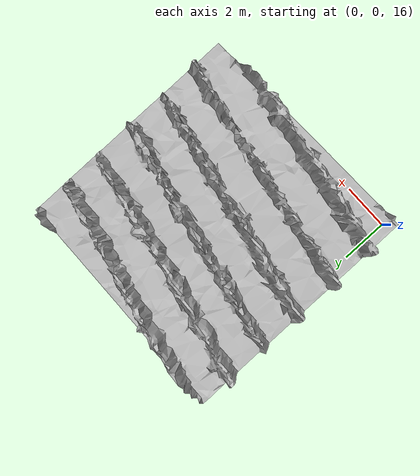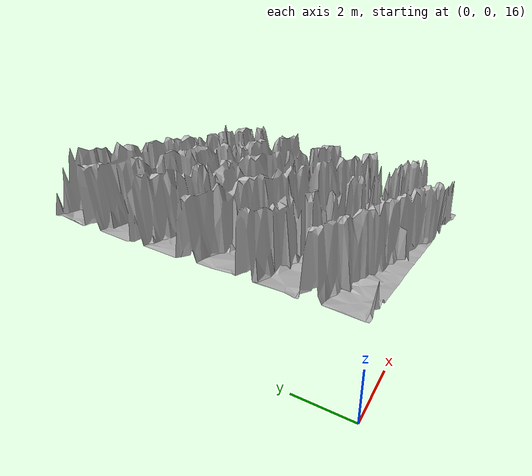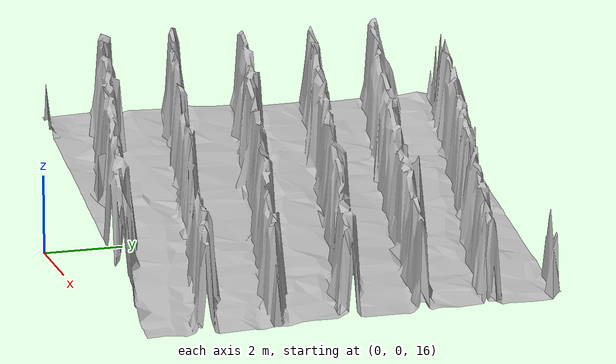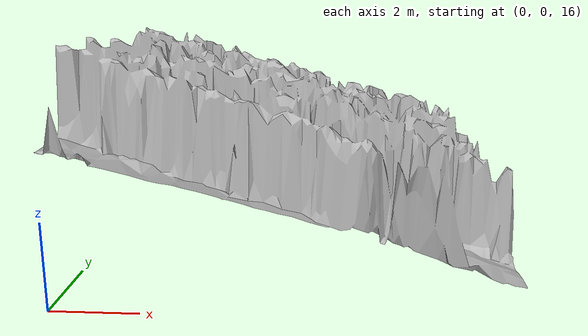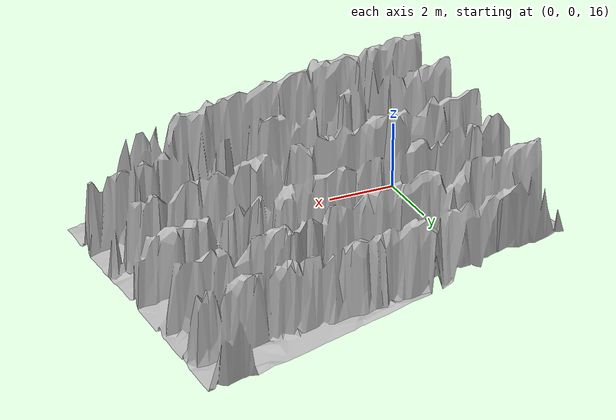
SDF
<?xml version="1.0" ?>
<sdf version="1.10">
    <model name="map_170_0">
        <link name="map_170_0_link">
            <visual name="map_170_0_visual">
                <geometry>
                    <mesh>
                        <uri>meshes/visual/map_170_0.obj</uri>
                    </mesh>
                </geometry>
            </visual>
            <collision name="map_170_0_collision">
                <surface>
                    <friction>
                        <ode>
                            <mu>2.316343837943928</mu>
                            <mu2>2.316343837943928</mu2>
                        </ode>
                        <bullet>
                            <friction>2.316343837943928</friction>
                            <friction2>2.316343837943928</friction2>
                        </bullet>
                    </friction>
                </surface>
                <geometry>
                    <mesh>
                        <uri>meshes/visual/map_170_0.obj</uri>
                    </mesh>
                </geometry>
            </collision>
        </link>
        <static>True</static>
    </model>
</sdf>
